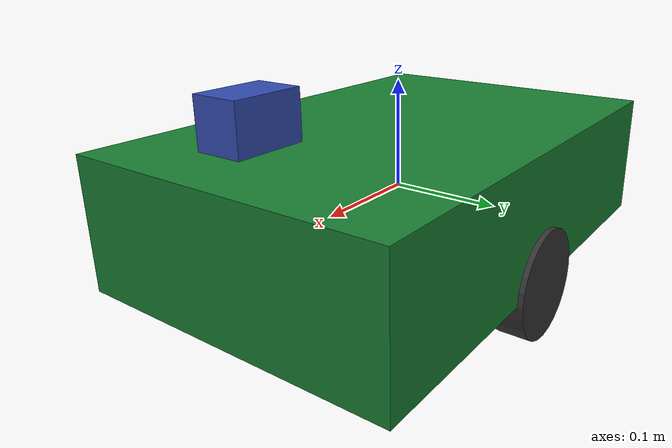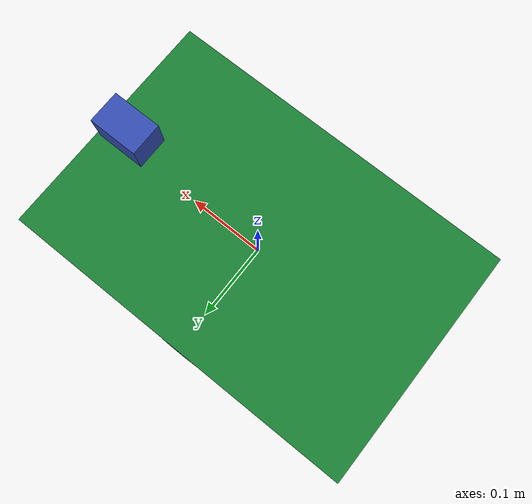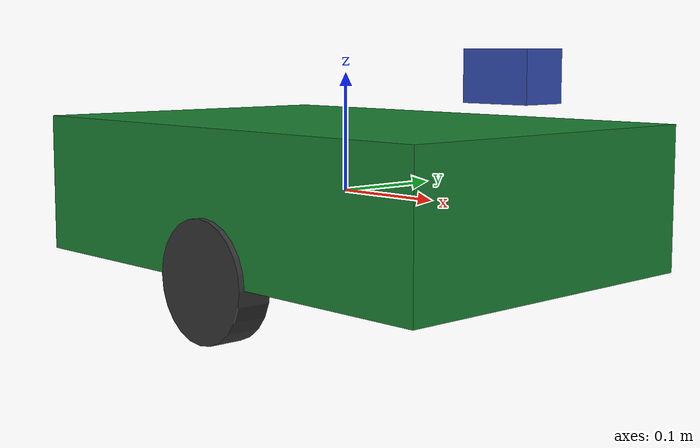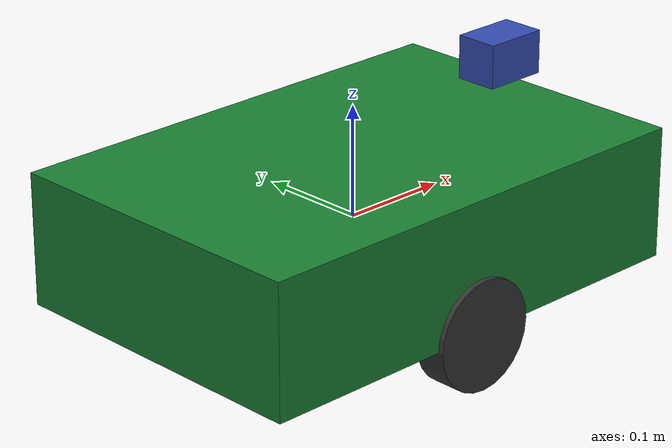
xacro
<?xml version="1.0"?>
<robot xmlns:xacro="http://www.ros.org/wiki/xacro" name="forest_rover">
  <xacro:property name="base_length" value="0.45"/>
  <xacro:property name="base_width" value="0.30"/>
  <xacro:property name="base_height" value="0.12"/>
  <xacro:property name="wheel_radius" value="0.05"/>

  <link name="base_link">
    <visual>
      <origin xyz="0 0 0" rpy="0 0 0"/>
      <geometry>
        <box size="${base_length} ${base_width} ${base_height}"/>
      </geometry>
      <material name="green">
        <color rgba="0.1 0.5 0.2 1.0"/>
      </material>
    </visual>
  </link>

  <link name="left_wheel_link">
    <visual>
      <origin xyz="0 0 0" rpy="1.5708 0 0"/>
      <geometry>
        <cylinder radius="${wheel_radius}" length="0.03"/>
      </geometry>
      <material name="black">
        <color rgba="0.2 0.2 0.2 1.0"/>
      </material>
    </visual>
  </link>

  <link name="right_wheel_link">
    <visual>
      <origin xyz="0 0 0" rpy="1.5708 0 0"/>
      <geometry>
        <cylinder radius="${wheel_radius}" length="0.03"/>
      </geometry>
      <material name="black"/>
    </visual>
  </link>

  <joint name="left_wheel_joint" type="continuous">
    <parent link="base_link"/>
    <child link="left_wheel_link"/>
    <origin xyz="0 0.14 -0.06" rpy="0 0 0"/>
    <axis xyz="0 1 0"/>
  </joint>

  <joint name="right_wheel_joint" type="continuous">
    <parent link="base_link"/>
    <child link="right_wheel_link"/>
    <origin xyz="0 -0.14 -0.06" rpy="0 0 0"/>
    <axis xyz="0 1 0"/>
  </joint>

  <link name="camera_link">
    <visual>
      <origin xyz="0 0 0" rpy="0 0 0"/>
      <geometry>
        <box size="0.06 0.04 0.04"/>
      </geometry>
      <material name="blue">
        <color rgba="0.2 0.3 0.7 1.0"/>
      </material>
    </visual>
  </link>

  <joint name="camera_joint" type="fixed">
    <parent link="base_link"/>
    <child link="camera_link"/>
    <origin xyz="0.18 0 0.10" rpy="0 0 0"/>
  </joint>

  <link name="imu_link"/>
  <joint name="imu_joint" type="fixed">
    <parent link="base_link"/>
    <child link="imu_link"/>
    <origin xyz="0 0 0.04" rpy="0 0 0"/>
  </joint>
</robot>
